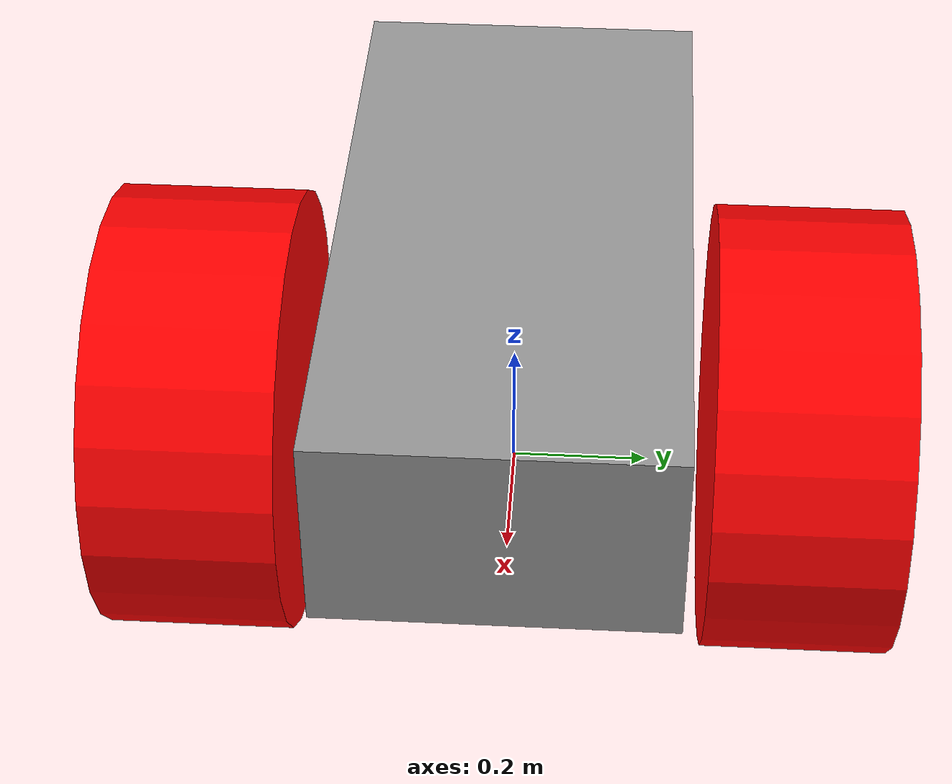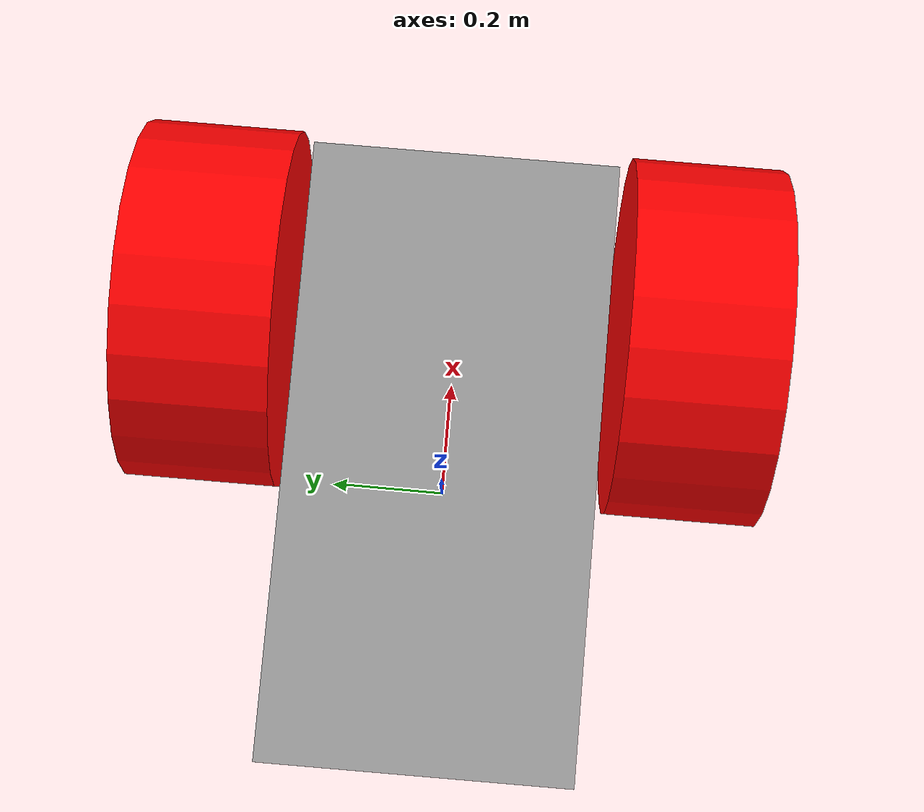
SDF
<?xml version='1.0'?>
<sdf version='1.7'>
  <model name='simple_rover'>
    <link name='chassis'>
      <inertial>
        <mass>1</mass>
        <inertia>
          <ixx>0.166667</ixx>
          <ixy>0</ixy>
          <ixz>0</ixz>
          <iyy>0.166667</iyy>
          <iyz>0</iyz>
          <izz>0.166667</izz>
        </inertia>
        <pose>0 0 0 0 -0 0</pose>
      </inertial>
      <self_collide>0</self_collide>
      <enable_wind>0</enable_wind>
      <kinematic>0</kinematic>
      <pose>0 -0 0.3 0 -0 0</pose>
      <gravity>1</gravity>
      <visual name='visual'>
        <geometry>
          <box>
            <size>1 0.5 0.3</size>
          </box>
        </geometry>
        <material>
          <script>
            <name>Gazebo/Grey</name>
            <uri>file://media/materials/scripts/gazebo.material</uri>
          </script>
          <shader type='pixel'>
            <normal_map>__default__</normal_map>
          </shader>
          <ambient>1 1 1 1</ambient>
          <diffuse>0 0 0 1</diffuse>
          <specular>0.01 0.01 0.01 1</specular>
          <emissive>0 0 0 1</emissive>
        </material>
        <pose>0 0 0 0 -0 0</pose>
        <transparency>0</transparency>
        <cast_shadows>1</cast_shadows>
      </visual>
      <collision name='collision'>
        <laser_retro>0</laser_retro>
        <max_contacts>10</max_contacts>
        <pose>0 0 0 0 -0 0</pose>
        <geometry>
          <box>
            <size>1 0.5 0.3</size>
          </box>
        </geometry>
        <surface>
          <friction>
            <ode>
              <mu>1</mu>
              <mu2>1</mu2>
              <fdir1>0 0 0</fdir1>
              <slip1>0</slip1>
              <slip2>0</slip2>
            </ode>
            <torsional>
              <coefficient>1</coefficient>
              <patch_radius>0</patch_radius>
              <surface_radius>0</surface_radius>
              <use_patch_radius>1</use_patch_radius>
              <ode>
                <slip>0</slip>
              </ode>
            </torsional>
          </friction>
          <bounce>
            <restitution_coefficient>0</restitution_coefficient>
            <threshold>1e+06</threshold>
          </bounce>
          <contact>
            <collide_without_contact>0</collide_without_contact>
            <collide_without_contact_bitmask>1</collide_without_contact_bitmask>
            <collide_bitmask>1</collide_bitmask>
            <ode>
              <soft_cfm>0</soft_cfm>
              <soft_erp>0.2</soft_erp>
              <kp>1e+13</kp>
              <kd>1</kd>
              <max_vel>0.01</max_vel>
              <min_depth>0</min_depth>
            </ode>
            <bullet>
              <split_impulse>1</split_impulse>
              <split_impulse_penetration_threshold>-0.01</split_impulse_penetration_threshold>
              <soft_cfm>0</soft_cfm>
              <soft_erp>0.2</soft_erp>
              <kp>1e+13</kp>
              <kd>1</kd>
            </bullet>
          </contact>
        </surface>
      </collision>
    </link>
    <link name='caster_wheel'>
      <inertial>
        <mass>15.1844</mass>
        <inertia>
          <ixx>1.51844</ixx>
          <ixy>0</ixy>
          <ixz>0</ixz>
          <iyy>1.51844</iyy>
          <iyz>0</iyz>
          <izz>1.51844</izz>
        </inertia>
        <pose>0 0 0 0 -0 0</pose>
      </inertial>
      <pose>-0.3 0 0.2 0 -0 0</pose>
      <gravity>1</gravity>
      <self_collide>0</self_collide>
      <kinematic>0</kinematic>
      <enable_wind>0</enable_wind>
      <visual name='visual'>
        <pose>0 0 0 0 -0 0</pose>
        <geometry>
          <sphere>
            <radius>0.2</radius>
          </sphere>
        </geometry>
        <material>
          <lighting>1</lighting>
          <script>
            <uri>file://media/materials/scripts/gazebo.material</uri>
            <name>Gazebo/Grey</name>
          </script>
          <shader type='pixel'>
            <normal_map>__default__</normal_map>
          </shader>
          <ambient>0 0 0 1</ambient>
          <diffuse>0.3 0.3 0.3 0</diffuse>
          <specular>0.3 0.3 0.3 0</specular>
          <emissive>0.3 0.3 0.3 1</emissive>
        </material>
        <transparency>0</transparency>
        <cast_shadows>1</cast_shadows>
      </visual>
      <collision name='collision'>
        <laser_retro>0</laser_retro>
        <max_contacts>10</max_contacts>
        <pose>0 0 0 0 -0 0</pose>
        <geometry>
          <sphere>
            <radius>0.2</radius>
          </sphere>
        </geometry>
        <surface>
          <friction>
            <ode>
              <mu>1</mu>
              <mu2>1</mu2>
              <fdir1>0 0 0</fdir1>
              <slip1>0</slip1>
              <slip2>0</slip2>
            </ode>
            <torsional>
              <coefficient>1</coefficient>
              <patch_radius>0</patch_radius>
              <surface_radius>0</surface_radius>
              <use_patch_radius>1</use_patch_radius>
              <ode>
                <slip>0</slip>
              </ode>
            </torsional>
          </friction>
          <bounce>
            <restitution_coefficient>0</restitution_coefficient>
            <threshold>1e+06</threshold>
          </bounce>
          <contact>
            <collide_without_contact>0</collide_without_contact>
            <collide_without_contact_bitmask>1</collide_without_contact_bitmask>
            <collide_bitmask>1</collide_bitmask>
            <ode>
              <soft_cfm>0</soft_cfm>
              <soft_erp>0.2</soft_erp>
              <kp>1e+13</kp>
              <kd>1</kd>
              <max_vel>0.01</max_vel>
              <min_depth>0</min_depth>
            </ode>
            <bullet>
              <split_impulse>1</split_impulse>
              <split_impulse_penetration_threshold>-0.01</split_impulse_penetration_threshold>
              <soft_cfm>0</soft_cfm>
              <soft_erp>0.2</soft_erp>
              <kp>1e+13</kp>
              <kd>1</kd>
            </bullet>
          </contact>
        </surface>
      </collision>
    </link>
    <link name='front_left_wheel'>
      <inertial>
        <mass>1</mass>
        <inertia>
          <ixx>0.145833</ixx>
          <ixy>0</ixy>
          <ixz>0</ixz>
          <iyy>0.145833</iyy>
          <iyz>0</iyz>
          <izz>0.125</izz>
        </inertia>
        <pose>0 0 0 0 -0 0</pose>
      </inertial>
      <pose>0.25 -0.4 0.3 0 -0 0</pose>
      <gravity>1</gravity>
      <self_collide>0</self_collide>
      <kinematic>0</kinematic>
      <enable_wind>0</enable_wind>
      <visual name='visual'>
        <pose>0 0 0 1.5707 -0 0</pose>
        <geometry>
          <cylinder>
            <radius>0.3</radius>
            <length>0.25</length>
          </cylinder>
        </geometry>
        <material>
          <lighting>1</lighting>
          <script>
            <uri>file://media/materials/scripts/gazebo.material</uri>
            <name>Gazebo/Grey</name>
          </script>
          <shader type='pixel'>
            <normal_map>__default__</normal_map>
          </shader>
          <ambient>1 0 0 1</ambient>
          <diffuse>0.7 0.7 0.7 0</diffuse>
          <specular>0.01 0.01 0.01 0</specular>
          <emissive>0 0 0 1</emissive>
        </material>
        <transparency>0</transparency>
        <cast_shadows>1</cast_shadows>
      </visual>
      <collision name='collision'>
        <laser_retro>0</laser_retro>
        <max_contacts>10</max_contacts>
        <pose>0 0 0 1.5707 -0 0</pose>
        <geometry>
          <cylinder>
            <radius>0.3</radius>
            <length>0.25</length>
          </cylinder>
        </geometry>
        <surface>
          <friction>
            <ode>
              <mu>1</mu>
              <mu2>1</mu2>
              <fdir1>0 0 0</fdir1>
              <slip1>0</slip1>
              <slip2>0</slip2>
            </ode>
            <torsional>
              <coefficient>1</coefficient>
              <patch_radius>0</patch_radius>
              <surface_radius>0</surface_radius>
              <use_patch_radius>1</use_patch_radius>
              <ode>
                <slip>0</slip>
              </ode>
            </torsional>
          </friction>
          <bounce>
            <restitution_coefficient>0</restitution_coefficient>
            <threshold>1e+06</threshold>
          </bounce>
          <contact>
            <collide_without_contact>0</collide_without_contact>
            <collide_without_contact_bitmask>1</collide_without_contact_bitmask>
            <collide_bitmask>1</collide_bitmask>
            <ode>
              <soft_cfm>0</soft_cfm>
              <soft_erp>0.2</soft_erp>
              <kp>1e+13</kp>
              <kd>1</kd>
              <max_vel>0.01</max_vel>
              <min_depth>0</min_depth>
            </ode>
            <bullet>
              <split_impulse>1</split_impulse>
              <split_impulse_penetration_threshold>-0.01</split_impulse_penetration_threshold>
              <soft_cfm>0</soft_cfm>
              <soft_erp>0.2</soft_erp>
              <kp>1e+13</kp>
              <kd>1</kd>
            </bullet>
          </contact>
        </surface>
      </collision>
    </link>
    <link name='front_right_wheel'>
      <inertial>
        <mass>1</mass>
        <inertia>
          <ixx>0.145833</ixx>
          <ixy>0</ixy>
          <ixz>0</ixz>
          <iyy>0.145833</iyy>
          <iyz>0</iyz>
          <izz>0.125</izz>
        </inertia>
        <pose>0 0 0 0 -0 0</pose>
      </inertial>
      <pose>0.25 0.4 0.3 0 -0 0</pose>
      <gravity>1</gravity>
      <self_collide>0</self_collide>
      <kinematic>0</kinematic>
      <enable_wind>0</enable_wind>
      <visual name='visual'>
        <pose>0 0 0 1.5707 -0 0</pose>
        <geometry>
          <cylinder>
            <radius>0.3</radius>
            <length>0.25</length>
          </cylinder>
        </geometry>
        <material>
          <lighting>1</lighting>
          <script>
            <uri>file://media/materials/scripts/gazebo.material</uri>
            <name>Gazebo/Grey</name>
          </script>
          <shader type='pixel'>
            <normal_map>__default__</normal_map>
          </shader>
          <ambient>1 0 0 0</ambient>
          <diffuse>0.7 0.7 0.7 0</diffuse>
          <specular>0.01 0.01 0.01 0</specular>
          <emissive>0 0 0 1</emissive>
        </material>
        <transparency>0</transparency>
        <cast_shadows>1</cast_shadows>
      </visual>
      <collision name='collision'>
        <laser_retro>0</laser_retro>
        <max_contacts>10</max_contacts>
        <pose>0 0 0 1.5707 -0 0</pose>
        <geometry>
          <cylinder>
            <radius>0.3</radius>
            <length>0.25</length>
          </cylinder>
        </geometry>
        <surface>
          <friction>
            <ode>
              <mu>1</mu>
              <mu2>1</mu2>
              <fdir1>0 0 0</fdir1>
              <slip1>0</slip1>
              <slip2>0</slip2>
            </ode>
            <torsional>
              <coefficient>1</coefficient>
              <patch_radius>0</patch_radius>
              <surface_radius>0</surface_radius>
              <use_patch_radius>1</use_patch_radius>
              <ode>
                <slip>0</slip>
              </ode>
            </torsional>
          </friction>
          <bounce>
            <restitution_coefficient>0</restitution_coefficient>
            <threshold>1e+06</threshold>
          </bounce>
          <contact>
            <collide_without_contact>0</collide_without_contact>
            <collide_without_contact_bitmask>1</collide_without_contact_bitmask>
            <collide_bitmask>1</collide_bitmask>
            <ode>
              <soft_cfm>0</soft_cfm>
              <soft_erp>0.2</soft_erp>
              <kp>1e+13</kp>
              <kd>1</kd>
              <max_vel>0.01</max_vel>
              <min_depth>0</min_depth>
            </ode>
            <bullet>
              <split_impulse>1</split_impulse>
              <split_impulse_penetration_threshold>-0.01</split_impulse_penetration_threshold>
              <soft_cfm>0</soft_cfm>
              <soft_erp>0.2</soft_erp>
              <kp>1e+13</kp>
              <kd>1</kd>
            </bullet>
          </contact>
        </surface>
      </collision>
    </link>
    <joint name='link_caster_wheel' type='ball'>
      <parent>chassis</parent>
      <child>caster_wheel</child>
      <pose>0 0 0 0 -0 0</pose>
      <physics>
        <ode>
          <limit>
            <cfm>0</cfm>
            <erp>0.2</erp>
          </limit>
          <suspension>
            <cfm>0</cfm>
            <erp>0.2</erp>
          </suspension>
        </ode>
      </physics>
    </joint>
    <joint name='link_chassis_left_wheel' type='revolute'>
      <parent>chassis</parent>
      <child>front_left_wheel</child>
      <pose>0 0 0 0 -0 0</pose>
      <axis>
        <xyz>0 1 0</xyz>
        <limit>
          <lower>-1.79769e+308</lower>
          <upper>1.79769e+308</upper>
          <effort>-1</effort>
          <velocity>-1</velocity>
        </limit>
        <dynamics>
          <spring_reference>0</spring_reference>
          <spring_stiffness>0</spring_stiffness>
          <damping>0</damping>
          <friction>0</friction>
        </dynamics>
      </axis>
      <physics>
        <ode>
          <limit>
            <cfm>0</cfm>
            <erp>0.2</erp>
          </limit>
          <suspension>
            <cfm>0</cfm>
            <erp>0.2</erp>
          </suspension>
        </ode>
      </physics>
    </joint>
    <joint name='link_chassis_right_wheel' type='revolute'>
      <parent>chassis</parent>
      <child>front_right_wheel</child>
      <pose>0 0 0 0 -0 0</pose>
      <axis>
        <xyz>0 1 0</xyz>
        <limit>
          <lower>-1.79769e+308</lower>
          <upper>1.79769e+308</upper>
          <effort>-1</effort>
          <velocity>-1</velocity>
        </limit>
        <dynamics>
          <spring_reference>0</spring_reference>
          <spring_stiffness>0</spring_stiffness>
          <damping>0</damping>
          <friction>0</friction>
        </dynamics>
      </axis>
      <physics>
        <ode>
          <limit>
            <cfm>0</cfm>
            <erp>0.2</erp>
          </limit>
          <suspension>
            <cfm>0</cfm>
            <erp>0.2</erp>
          </suspension>
        </ode>
      </physics>
    </joint>
    <static>0</static>
    <allow_auto_disable>1</allow_auto_disable>
    <plugin name='simple_rover_diff_drive' filename='libgazebo_ros_diff_drive.so'>
      <update_rate>30</update_rate>
      <left_joint>link_chassis_left_wheel</left_joint>
      <right_joint>link_chassis_right_wheel</right_joint>
      <wheel_separation>0.52</wheel_separation>
      <wheel_diameter>0.28</wheel_diameter>
      <max_wheel_torque>20</max_wheel_torque>
      <max_wheel_acceleration>1.0</max_wheel_acceleration>
      <command_topic>cmd_vel</command_topic>
    </plugin>
  </model>
</sdf>
